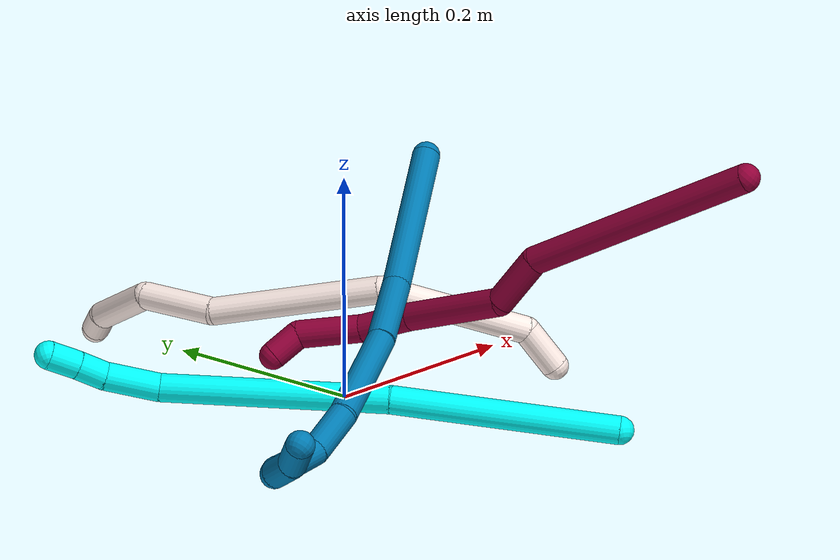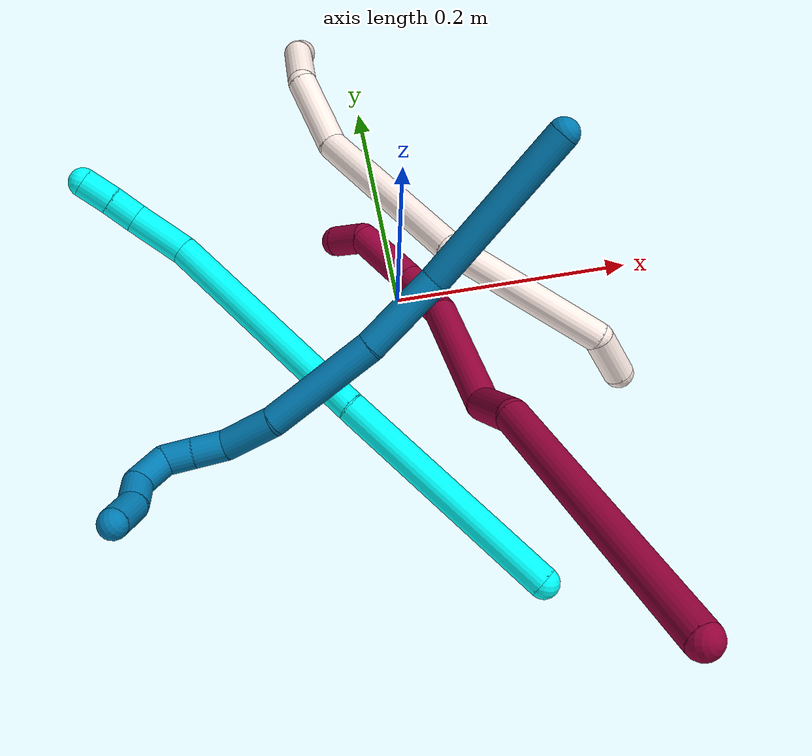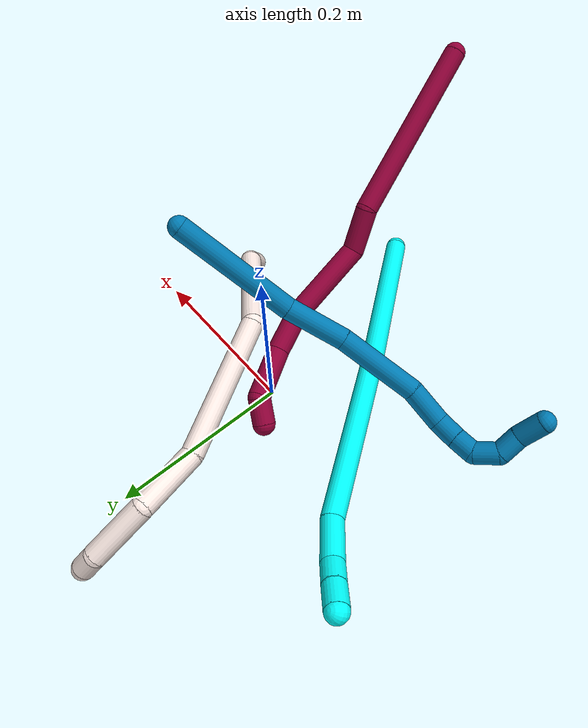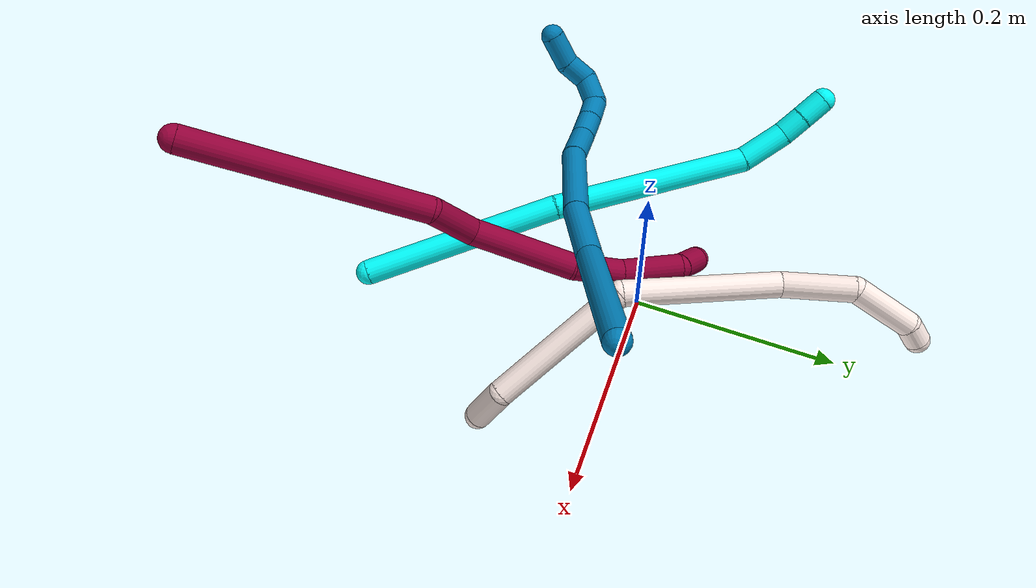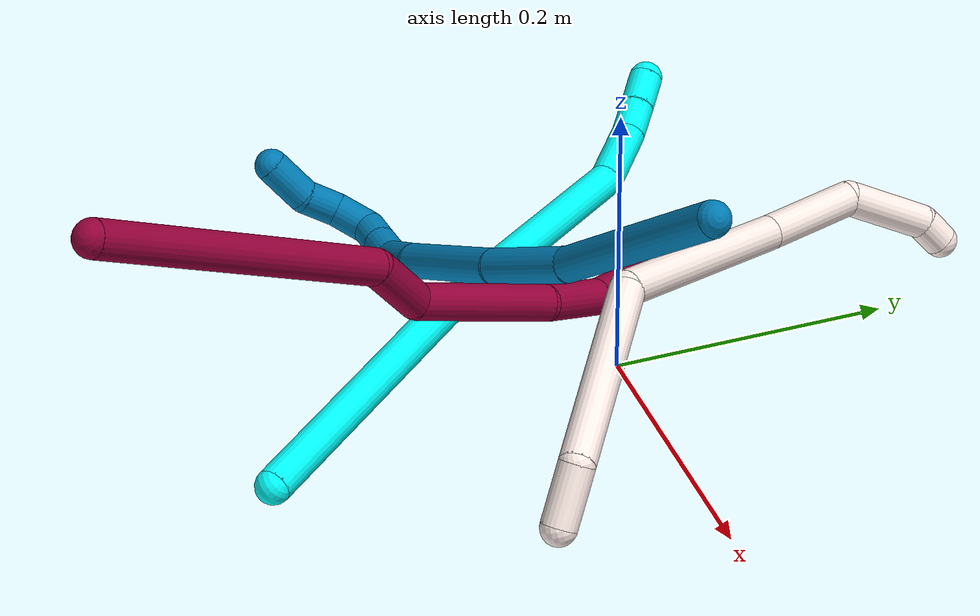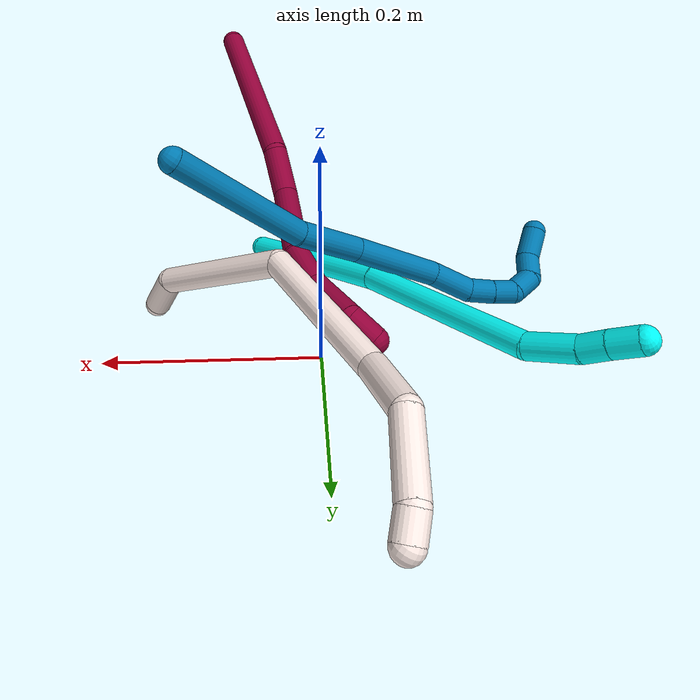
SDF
<sdf version="1.7">
 <world name="default">
  <model name="photoneo_s_sensor">
   <static>1</static>
   <pose>0 0 2 1.57079 1.57079 3.14159</pose>
   <link name="link">
    <inertial><mass>0.1</mass></inertial>
    <sensor name="sensor" type="depth">
     <update_rate>30</update_rate>
     <camera>
      <horizontal_fov>1.22</horizontal_fov>
      <image><width>1920</width><height>1200</height><format>B8G8R8</format></image>
      <clip><near>0.1</near><far>4</far></clip>
      <depth_camera><output>points</output></depth_camera>
     </camera>
     <plugin name="camera_plugin" filename="libgazebo_ros_depth_camera.so">
      <baseline>0.2</baseline>
      <alwaysOn>1</alwaysOn>
      <updateRate>0.0</updateRate>
      <cameraName>camera_ir</cameraName>
      <imageTopicName>/camera/color/image_raw</imageTopicName>
      <cameraInfoTopicName>/camera/color/camera_info</cameraInfoTopicName>
      <depthImageTopicName>/camera/depth/image_raw</depthImageTopicName>
      <depthImageCameraInfoTopicName>/camera/depth/camera_info</depthImageCameraInfoTopicName>
      <pointCloudTopicName>/camera/depth/points</pointCloudTopicName>
      <frameName>fr_optical</frameName>
      <pointCloudCutoff>0.1</pointCloudCutoff>
      <pointCloudCutoffMax>2.0</pointCloudCutoffMax>
      <distortionK1>0</distortionK1>
      <distortionK2>0</distortionK2>
      <distortionK3>0</distortionK3>
      <distortionT1>0</distortionT1>
      <distortionT2>0</distortionT2>
      <CxPrime>0</CxPrime>
      <Cx>0</Cx>
      <Cy>0</Cy>
      <focalLength>0</focalLength>
      <hackBaseline>0</hackBaseline>
     </plugin>
    </sensor>
   </link>
  </model>
  <model name="bin">
   <static>1</static>
   <link name="bottom">
    <collision name="collision-bottom">
     <pose>0 0 -0.01 0 -0 0</pose>
     <geometry><box><size>0.8 0.6 0.02</size></box></geometry>
     <surface>
      <friction><ode><mu>100</mu><mu2>100</mu2></ode></friction>
      <contact><collide_bitmask>65535</collide_bitmask></contact>
     </surface>
    </collision>
   </link>
   <link name="west_wall">
    <collision name="collision-west_wall">
     <pose>-0.41 0 0.1 0 -0 0</pose>
     <geometry><box><size>0.02 0.6 0.2</size></box></geometry>
     <surface>
      <friction><ode><mu>100</mu><mu2>100</mu2></ode></friction>
      <contact><collide_bitmask>65535</collide_bitmask></contact>
     </surface>
    </collision>
   </link>
   <link name="east_wall">
    <collision name="collision-east_wall">
     <pose>0.41 0 0.1 0 -0 0</pose>
     <geometry><box><size>0.02 0.6 0.2</size></box></geometry>
     <surface>
      <friction><ode><mu>100</mu><mu2>100</mu2></ode></friction>
      <contact><collide_bitmask>65535</collide_bitmask></contact>
     </surface>
    </collision>
   </link>
   <link name="south_wall">
    <collision name="collision-south_wall">
     <pose>0 -0.31 0.1 0 -0 0</pose>
     <geometry><box><size>0.8 0.02 0.2</size></box></geometry>
     <surface>
      <friction><ode><mu>100</mu><mu2>100</mu2></ode></friction>
      <contact><collide_bitmask>65535</collide_bitmask></contact>
     </surface>
    </collision>
   </link>
   <link name="north_wall">
    <collision name="collision-north_wall">
     <pose>0 0.31 0.1 0 -0 0</pose>
     <geometry><box><size>0.8 0.02 0.2</size></box></geometry>
     <surface>
      <friction><ode><mu>100</mu><mu2>100</mu2></ode></friction>
      <contact><collide_bitmask>65535</collide_bitmask></contact>
     </surface>
    </collision>
   </link>
  </model>
  <model name="3">
   <static>0</static>
   <link name="3">
    <collision name="collision-cylinder-e_1_1_4">
     <pose>-0.059244 0.069343 -0.038996 -2.08308 -0.640087 1.03106</pose>
     <geometry><cylinder><radius>0.0125</radius><length>0.198383</length></cylinder></geometry>
     <surface>
      <friction><ode><mu>1.16</mu><mu2>1.16</mu2><slip1>0</slip1><slip2>0</slip2></ode></friction>
      <contact><ode><kp>1e+06</kp><kd>1</kd><max_vel>0</max_vel><min_depth>0.001</min_depth></ode></contact>
     </surface>
    </collision>
    <visual name="visual-cylinder-e_1_1_4">
     <pose>-0.059244 0.069343 -0.038996 -2.08308 -0.640087 1.03106</pose>
     <geometry><cylinder><radius>0.0125</radius><length>0.198383</length></cylinder></geometry>
     <material><ambient>0.003922 1 0.996078 1</ambient></material>
    </visual>
    <collision name="collision-cylinder-e_2_4_5">
     <pose>-0.186497 0.20314 -0.113076 -2.06928 -0.747408 1.16663</pose>
     <geometry><cylinder><radius>0.0125</radius><length>0.200106</length></cylinder></geometry>
     <surface>
      <friction><ode><mu>1.16</mu><mu2>1.16</mu2><slip1>0</slip1><slip2>0</slip2></ode></friction>
      <contact><ode><kp>1e+06</kp><kd>1</kd><max_vel>0</max_vel><min_depth>0.001</min_depth></ode></contact>
     </surface>
    </collision>
    <visual name="visual-cylinder-e_2_4_5">
     <pose>-0.186497 0.20314 -0.113076 -2.06928 -0.747408 1.16663</pose>
     <geometry><cylinder><radius>0.0125</radius><length>0.200106</length></cylinder></geometry>
     <material><ambient>0.003922 1 0.996078 1</ambient></material>
    </visual>
    <collision name="collision-cylinder-e_3_5_6">
     <pose>-0.264411 0.288225 -0.156956 -1.97377 -0.415853 0.618108</pose>
     <geometry><cylinder><radius>0.0125</radius><length>0.049034</length></cylinder></geometry>
     <surface>
      <friction><ode><mu>1.16</mu><mu2>1.16</mu2><slip1>0</slip1><slip2>0</slip2></ode></friction>
      <contact><ode><kp>1e+06</kp><kd>1</kd><max_vel>0</max_vel><min_depth>0.001</min_depth></ode></contact>
     </surface>
    </collision>
    <visual name="visual-cylinder-e_3_5_6">
     <pose>-0.264411 0.288225 -0.156956 -1.97377 -0.415853 0.618108</pose>
     <geometry><cylinder><radius>0.0125</radius><length>0.049034</length></cylinder></geometry>
     <material><ambient>0.003922 1 0.996078 1</ambient></material>
    </visual>
    <collision name="collision-cylinder-e_4_6_7">
     <pose>-0.277137 0.319765 -0.171368 -2.04631 -0.226035 0.368008</pose>
     <geometry><cylinder><radius>0.0125</radius><length>0.025181</length></cylinder></geometry>
     <surface>
      <friction><ode><mu>1.16</mu><mu2>1.16</mu2><slip1>0</slip1><slip2>0</slip2></ode></friction>
      <contact><ode><kp>1e+06</kp><kd>1</kd><max_vel>0</max_vel><min_depth>0.001</min_depth></ode></contact>
     </surface>
    </collision>
    <visual name="visual-cylinder-e_4_6_7">
     <pose>-0.277137 0.319765 -0.171368 -2.04631 -0.226035 0.368008</pose>
     <geometry><cylinder><radius>0.0125</radius><length>0.025181</length></cylinder></geometry>
     <material><ambient>0.003922 1 0.996078 1</ambient></material>
    </visual>
    <collision name="collision-cylinder-e_5_7_2">
     <pose>-0.283342 0.342732 -0.18241 -1.99357 -0.250471 0.384566</pose>
     <geometry><cylinder><radius>0.0125</radius><length>0.027297</length></cylinder></geometry>
     <surface>
      <friction><ode><mu>1.16</mu><mu2>1.16</mu2><slip1>0</slip1><slip2>0</slip2></ode></friction>
      <contact><ode><kp>1e+06</kp><kd>1</kd><max_vel>0</max_vel><min_depth>0.001</min_depth></ode></contact>
     </surface>
    </collision>
    <visual name="visual-cylinder-e_5_7_2">
     <pose>-0.283342 0.342732 -0.18241 -1.99357 -0.250471 0.384566</pose>
     <geometry><cylinder><radius>0.0125</radius><length>0.027297</length></cylinder></geometry>
     <material><ambient>0.003922 1 0.996078 1</ambient></material>
    </visual>
    <collision name="collision-sphere-2">
     <pose>-0.286724 0.35479 -0.187835 0 -0 0</pose>
     <geometry><sphere><radius>0.0125</radius></sphere></geometry>
     <surface>
      <friction><ode><mu>1.16</mu><mu2>1.16</mu2><slip1>0</slip1><slip2>0</slip2></ode></friction>
      <contact><ode><kp>1e+06</kp><kd>1</kd><max_vel>0</max_vel><min_depth>0.001</min_depth></ode></contact>
     </surface>
    </collision>
    <visual name="visual-sphere-2">
     <pose>-0.286724 0.35479 -0.187835 0 -0 0</pose>
     <geometry><sphere><radius>0.0125</radius></sphere></geometry>
     <material><ambient>0.003922 1 0.996078 1</ambient></material>
    </visual>
    <collision name="collision-sphere-7">
     <pose>-0.279959 0.330673 -0.176985 0 -0 0</pose>
     <geometry><sphere><radius>0.0125</radius></sphere></geometry>
     <surface>
      <friction><ode><mu>1.16</mu><mu2>1.16</mu2><slip1>0</slip1><slip2>0</slip2></ode></friction>
      <contact><ode><kp>1e+06</kp><kd>1</kd><max_vel>0</max_vel><min_depth>0.001</min_depth></ode></contact>
     </surface>
    </collision>
    <visual name="visual-sphere-7">
     <pose>-0.279959 0.330673 -0.176985 0 -0 0</pose>
     <geometry><sphere><radius>0.0125</radius></sphere></geometry>
     <material><ambient>0.003922 1 0.996078 1</ambient></material>
    </visual>
    <collision name="collision-sphere-6">
     <pose>-0.274315 0.308856 -0.165751 0 -0 0</pose>
     <geometry><sphere><radius>0.0125</radius></sphere></geometry>
     <surface>
      <friction><ode><mu>1.16</mu><mu2>1.16</mu2><slip1>0</slip1><slip2>0</slip2></ode></friction>
      <contact><ode><kp>1e+06</kp><kd>1</kd><max_vel>0</max_vel><min_depth>0.001</min_depth></ode></contact>
     </surface>
    </collision>
    <visual name="visual-sphere-6">
     <pose>-0.274315 0.308856 -0.165751 0 -0 0</pose>
     <geometry><sphere><radius>0.0125</radius></sphere></geometry>
     <material><ambient>0.003922 1 0.996078 1</ambient></material>
    </visual>
    <collision name="collision-sphere-5">
     <pose>-0.254507 0.267594 -0.148161 0 -0 0</pose>
     <geometry><sphere><radius>0.0125</radius></sphere></geometry>
     <surface>
      <friction><ode><mu>1.16</mu><mu2>1.16</mu2><slip1>0</slip1><slip2>0</slip2></ode></friction>
      <contact><ode><kp>1e+06</kp><kd>1</kd><max_vel>0</max_vel><min_depth>0.001</min_depth></ode></contact>
     </surface>
    </collision>
    <visual name="visual-sphere-5">
     <pose>-0.254507 0.267594 -0.148161 0 -0 0</pose>
     <geometry><sphere><radius>0.0125</radius></sphere></geometry>
     <material><ambient>0.003922 1 0.996078 1</ambient></material>
    </visual>
    <collision name="collision-sphere-1">
     <geometry><sphere><radius>0.0125</radius></sphere></geometry>
     <surface>
      <friction><ode><mu>1.16</mu><mu2>1.16</mu2><slip1>0</slip1><slip2>0</slip2></ode></friction>
      <contact><ode><kp>1e+06</kp><kd>1</kd><max_vel>0</max_vel><min_depth>0.001</min_depth></ode></contact>
     </surface>
    </collision>
    <visual name="visual-sphere-1">
     <geometry><sphere><radius>0.0125</radius></sphere></geometry>
     <material><ambient>0.003922 1 0.996078 1</ambient></material>
    </visual>
    <collision name="collision-sphere-4">
     <pose>-0.118487 0.138686 -0.077992 0 -0 0</pose>
     <geometry><sphere><radius>0.0125</radius></sphere></geometry>
     <surface>
      <friction><ode><mu>1.16</mu><mu2>1.16</mu2><slip1>0</slip1><slip2>0</slip2></ode></friction>
      <contact><ode><kp>1e+06</kp><kd>1</kd><max_vel>0</max_vel><min_depth>0.001</min_depth></ode></contact>
     </surface>
    </collision>
    <visual name="visual-sphere-4">
     <pose>-0.118487 0.138686 -0.077992 0 -0 0</pose>
     <geometry><sphere><radius>0.0125</radius></sphere></geometry>
     <material><ambient>0.003922 1 0.996078 1</ambient></material>
    </visual>
    <inertial>
     <pose>-0.1535 0.171892 -0.094708 0 -0 0</pose>
     <mass>0.5</mass>
     <inertia>
      <ixx>0.001374</ixx>
      <ixy>0</ixy>
      <ixz>0</ixz>
      <iyy>0.001313</iyy>
      <iyz>0</iyz>
      <izz>-6.6e-05</izz>
     </inertia>
    </inertial>
   </link>
   <pose>0.061919 -0.262532 0.012493 2.75175 -0.68094 -1.44195</pose>
  </model>
  <model name="8">
   <static>0</static>
   <link name="8">
    <collision name="collision-cylinder-e_1_1_4">
     <pose>8.4e-05 0.061785 -0.087802 -2.5284 0.000784 -0.002476</pose>
     <geometry><cylinder><radius>0.0125</radius><length>0.214724</length></cylinder></geometry>
     <surface>
      <friction><ode><mu>1.16</mu><mu2>1.16</mu2><slip1>0</slip1><slip2>0</slip2></ode></friction>
      <contact><ode><kp>1e+06</kp><kd>1</kd><max_vel>0</max_vel><min_depth>0.001</min_depth></ode></contact>
     </surface>
    </collision>
    <visual name="visual-cylinder-e_1_1_4">
     <pose>8.4e-05 0.061785 -0.087802 -2.5284 0.000784 -0.002476</pose>
     <geometry><cylinder><radius>0.0125</radius><length>0.214724</length></cylinder></geometry>
     <material><ambient>0.584314 0 0.227451 1</ambient></material>
    </visual>
    <collision name="collision-cylinder-e_2_4_5">
     <pose>0.00669 0.129295 -0.199542 -2.90679 0.259012 -1.66977</pose>
     <geometry><cylinder><radius>0.0125</radius><length>0.050924</length></cylinder></geometry>
     <surface>
      <friction><ode><mu>1.16</mu><mu2>1.16</mu2><slip1>0</slip1><slip2>0</slip2></ode></friction>
      <contact><ode><kp>1e+06</kp><kd>1</kd><max_vel>0</max_vel><min_depth>0.001</min_depth></ode></contact>
     </surface>
    </collision>
    <visual name="visual-cylinder-e_2_4_5">
     <pose>0.00669 0.129295 -0.199542 -2.90679 0.259012 -1.66977</pose>
     <geometry><cylinder><radius>0.0125</radius><length>0.050924</length></cylinder></geometry>
     <material><ambient>0.584314 0 0.227451 1</ambient></material>
    </visual>
    <collision name="collision-cylinder-e_3_5_6">
     <pose>0.01428 0.171749 -0.256834 -2.30811 0.021531 -0.048631</pose>
     <geometry><cylinder><radius>0.0125</radius><length>0.099248</length></cylinder></geometry>
     <surface>
      <friction><ode><mu>1.16</mu><mu2>1.16</mu2><slip1>0</slip1><slip2>0</slip2></ode></friction>
      <contact><ode><kp>1e+06</kp><kd>1</kd><max_vel>0</max_vel><min_depth>0.001</min_depth></ode></contact>
     </surface>
    </collision>
    <visual name="visual-cylinder-e_3_5_6">
     <pose>0.01428 0.171749 -0.256834 -2.30811 0.021531 -0.048631</pose>
     <geometry><cylinder><radius>0.0125</radius><length>0.099248</length></cylinder></geometry>
     <material><ambient>0.584314 0 0.227451 1</ambient></material>
    </visual>
    <collision name="collision-cylinder-e_4_6_7">
     <pose>0.011717 0.222775 -0.308942 -2.49015 -0.152763 0.445652</pose>
     <geometry><cylinder><radius>0.0125</radius><length>0.047722</length></cylinder></geometry>
     <surface>
      <friction><ode><mu>1.16</mu><mu2>1.16</mu2><slip1>0</slip1><slip2>0</slip2></ode></friction>
      <contact><ode><kp>1e+06</kp><kd>1</kd><max_vel>0</max_vel><min_depth>0.001</min_depth></ode></contact>
     </surface>
    </collision>
    <visual name="visual-cylinder-e_4_6_7">
     <pose>0.011717 0.222775 -0.308942 -2.49015 -0.152763 0.445652</pose>
     <geometry><cylinder><radius>0.0125</radius><length>0.047722</length></cylinder></geometry>
     <material><ambient>0.584314 0 0.227451 1</ambient></material>
    </visual>
    <collision name="collision-cylinder-e_5_7_8">
     <pose>-0.002589 0.254002 -0.34887 -2.46717 -0.375145 0.992381</pose>
     <geometry><cylinder><radius>0.0125</radius><length>0.05827</length></cylinder></geometry>
     <surface>
      <friction><ode><mu>1.16</mu><mu2>1.16</mu2><slip1>0</slip1><slip2>0</slip2></ode></friction>
      <contact><ode><kp>1e+06</kp><kd>1</kd><max_vel>0</max_vel><min_depth>0.001</min_depth></ode></contact>
     </surface>
    </collision>
    <visual name="visual-cylinder-e_5_7_8">
     <pose>-0.002589 0.254002 -0.34887 -2.46717 -0.375145 0.992381</pose>
     <geometry><cylinder><radius>0.0125</radius><length>0.05827</length></cylinder></geometry>
     <material><ambient>0.584314 0 0.227451 1</ambient></material>
    </visual>
    <collision name="collision-cylinder-e_6_8_2">
     <pose>-0.017061 0.270324 -0.384082 3.09848 -0.263879 -2.81953</pose>
     <geometry><cylinder><radius>0.0125</radius><length>0.029112</length></cylinder></geometry>
     <surface>
      <friction><ode><mu>1.16</mu><mu2>1.16</mu2><slip1>0</slip1><slip2>0</slip2></ode></friction>
      <contact><ode><kp>1e+06</kp><kd>1</kd><max_vel>0</max_vel><min_depth>0.001</min_depth></ode></contact>
     </surface>
    </collision>
    <visual name="visual-cylinder-e_6_8_2">
     <pose>-0.017061 0.270324 -0.384082 3.09848 -0.263879 -2.81953</pose>
     <geometry><cylinder><radius>0.0125</radius><length>0.029112</length></cylinder></geometry>
     <material><ambient>0.584314 0 0.227451 1</ambient></material>
    </visual>
    <collision name="collision-sphere-2">
     <pose>-0.020857 0.269719 -0.398121 0 -0 0</pose>
     <geometry><sphere><radius>0.0125</radius></sphere></geometry>
     <surface>
      <friction><ode><mu>1.16</mu><mu2>1.16</mu2><slip1>0</slip1><slip2>0</slip2></ode></friction>
      <contact><ode><kp>1e+06</kp><kd>1</kd><max_vel>0</max_vel><min_depth>0.001</min_depth></ode></contact>
     </surface>
    </collision>
    <visual name="visual-sphere-2">
     <pose>-0.020857 0.269719 -0.398121 0 -0 0</pose>
     <geometry><sphere><radius>0.0125</radius></sphere></geometry>
     <material><ambient>0.584314 0 0.227451 1</ambient></material>
    </visual>
    <collision name="collision-sphere-4">
     <pose>0.000168 0.123569 -0.175604 0 -0 0</pose>
     <geometry><sphere><radius>0.0125</radius></sphere></geometry>
     <surface>
      <friction><ode><mu>1.16</mu><mu2>1.16</mu2><slip1>0</slip1><slip2>0</slip2></ode></friction>
      <contact><ode><kp>1e+06</kp><kd>1</kd><max_vel>0</max_vel><min_depth>0.001</min_depth></ode></contact>
     </surface>
    </collision>
    <visual name="visual-sphere-4">
     <pose>0.000168 0.123569 -0.175604 0 -0 0</pose>
     <geometry><sphere><radius>0.0125</radius></sphere></geometry>
     <material><ambient>0.584314 0 0.227451 1</ambient></material>
    </visual>
    <collision name="collision-sphere-1">
     <geometry><sphere><radius>0.0125</radius></sphere></geometry>
     <surface>
      <friction><ode><mu>1.16</mu><mu2>1.16</mu2><slip1>0</slip1><slip2>0</slip2></ode></friction>
      <contact><ode><kp>1e+06</kp><kd>1</kd><max_vel>0</max_vel><min_depth>0.001</min_depth></ode></contact>
     </surface>
    </collision>
    <visual name="visual-sphere-1">
     <geometry><sphere><radius>0.0125</radius></sphere></geometry>
     <material><ambient>0.584314 0 0.227451 1</ambient></material>
    </visual>
    <collision name="collision-sphere-8">
     <pose>-0.013264 0.27093 -0.370043 0 -0 0</pose>
     <geometry><sphere><radius>0.0125</radius></sphere></geometry>
     <surface>
      <friction><ode><mu>1.16</mu><mu2>1.16</mu2><slip1>0</slip1><slip2>0</slip2></ode></friction>
      <contact><ode><kp>1e+06</kp><kd>1</kd><max_vel>0</max_vel><min_depth>0.001</min_depth></ode></contact>
     </surface>
    </collision>
    <visual name="visual-sphere-8">
     <pose>-0.013264 0.27093 -0.370043 0 -0 0</pose>
     <geometry><sphere><radius>0.0125</radius></sphere></geometry>
     <material><ambient>0.584314 0 0.227451 1</ambient></material>
    </visual>
    <collision name="collision-sphere-5">
     <pose>0.013211 0.135022 -0.223479 0 -0 0</pose>
     <geometry><sphere><radius>0.0125</radius></sphere></geometry>
     <surface>
      <friction><ode><mu>1.16</mu><mu2>1.16</mu2><slip1>0</slip1><slip2>0</slip2></ode></friction>
      <contact><ode><kp>1e+06</kp><kd>1</kd><max_vel>0</max_vel><min_depth>0.001</min_depth></ode></contact>
     </surface>
    </collision>
    <visual name="visual-sphere-5">
     <pose>0.013211 0.135022 -0.223479 0 -0 0</pose>
     <geometry><sphere><radius>0.0125</radius></sphere></geometry>
     <material><ambient>0.584314 0 0.227451 1</ambient></material>
    </visual>
    <collision name="collision-sphere-6">
     <pose>0.015348 0.208475 -0.290188 0 -0 0</pose>
     <geometry><sphere><radius>0.0125</radius></sphere></geometry>
     <surface>
      <friction><ode><mu>1.16</mu><mu2>1.16</mu2><slip1>0</slip1><slip2>0</slip2></ode></friction>
      <contact><ode><kp>1e+06</kp><kd>1</kd><max_vel>0</max_vel><min_depth>0.001</min_depth></ode></contact>
     </surface>
    </collision>
    <visual name="visual-sphere-6">
     <pose>0.015348 0.208475 -0.290188 0 -0 0</pose>
     <geometry><sphere><radius>0.0125</radius></sphere></geometry>
     <material><ambient>0.584314 0 0.227451 1</ambient></material>
    </visual>
    <collision name="collision-sphere-7">
     <pose>0.008086 0.237074 -0.327696 0 -0 0</pose>
     <geometry><sphere><radius>0.0125</radius></sphere></geometry>
     <surface>
      <friction><ode><mu>1.16</mu><mu2>1.16</mu2><slip1>0</slip1><slip2>0</slip2></ode></friction>
      <contact><ode><kp>1e+06</kp><kd>1</kd><max_vel>0</max_vel><min_depth>0.001</min_depth></ode></contact>
     </surface>
    </collision>
    <visual name="visual-sphere-7">
     <pose>0.008086 0.237074 -0.327696 0 -0 0</pose>
     <geometry><sphere><radius>0.0125</radius></sphere></geometry>
     <material><ambient>0.584314 0 0.227451 1</ambient></material>
    </visual>
    <inertial>
     <pose>0.003375 0.140396 -0.201517 0 -0 0</pose>
     <mass>0.5</mass>
     <inertia>
      <ixx>0.000932</ixx>
      <ixy>0</ixy>
      <ixz>0</ixz>
      <iyy>-0.000725</iyy>
      <iyz>0</iyz>
      <izz>-0.000591</izz>
     </inertia>
    </inertial>
   </link>
   <pose>0.095382 -0.366032 0.248713 0.362771 0.638925 -0.103189</pose>
  </model>
  <model name="9">
   <static>0</static>
   <link name="9">
    <collision name="collision-cylinder-e_1_1_4">
     <pose>0.010388 -0.021405 -0.069303 2.84202 0.142249 0.882137</pose>
     <geometry><cylinder><radius>0.0125</radius><length>0.146547</length></cylinder></geometry>
     <surface>
      <friction><ode><mu>1.16</mu><mu2>1.16</mu2><slip1>0</slip1><slip2>0</slip2></ode></friction>
      <contact><ode><kp>1e+06</kp><kd>1</kd><max_vel>0</max_vel><min_depth>0.001</min_depth></ode></contact>
     </surface>
    </collision>
    <visual name="visual-cylinder-e_1_1_4">
     <pose>0.010388 -0.021405 -0.069303 2.84202 0.142249 0.882137</pose>
     <geometry><cylinder><radius>0.0125</radius><length>0.146547</length></cylinder></geometry>
     <material><ambient>0 0.490196 0.709804 1</ambient></material>
    </visual>
    <collision name="collision-cylinder-e_2_4_5">
     <pose>0.020838 -0.058327 -0.170654 2.6907 0.001756 0.007656</pose>
     <geometry><cylinder><radius>0.0125</radius><length>0.071214</length></cylinder></geometry>
     <surface>
      <friction><ode><mu>1.16</mu><mu2>1.16</mu2><slip1>0</slip1><slip2>0</slip2></ode></friction>
      <contact><ode><kp>1e+06</kp><kd>1</kd><max_vel>0</max_vel><min_depth>0.001</min_depth></ode></contact>
     </surface>
    </collision>
    <visual name="visual-cylinder-e_2_4_5">
     <pose>0.020838 -0.058327 -0.170654 2.6907 0.001756 0.007656</pose>
     <geometry><cylinder><radius>0.0125</radius><length>0.071214</length></cylinder></geometry>
     <material><ambient>0 0.490196 0.709804 1</ambient></material>
    </visual>
    <collision name="collision-cylinder-e_3_5_6">
     <pose>0.016484 -0.089555 -0.248263 2.80951 -0.091393 -0.532761</pose>
     <geometry><cylinder><radius>0.0125</radius><length>0.096792</length></cylinder></geometry>
     <surface>
      <friction><ode><mu>1.16</mu><mu2>1.16</mu2><slip1>0</slip1><slip2>0</slip2></ode></friction>
      <contact><ode><kp>1e+06</kp><kd>1</kd><max_vel>0</max_vel><min_depth>0.001</min_depth></ode></contact>
     </surface>
    </collision>
    <visual name="visual-cylinder-e_3_5_6">
     <pose>0.016484 -0.089555 -0.248263 2.80951 -0.091393 -0.532761</pose>
     <geometry><cylinder><radius>0.0125</radius><length>0.096792</length></cylinder></geometry>
     <material><ambient>0 0.490196 0.709804 1</ambient></material>
    </visual>
    <collision name="collision-cylinder-e_4_6_7">
     <pose>0.008406 -0.107564 -0.316155 3.03907 -0.161651 -2.0124</pose>
     <geometry><cylinder><radius>0.0125</radius><length>0.045492</length></cylinder></geometry>
     <surface>
      <friction><ode><mu>1.16</mu><mu2>1.16</mu2><slip1>0</slip1><slip2>0</slip2></ode></friction>
      <contact><ode><kp>1e+06</kp><kd>1</kd><max_vel>0</max_vel><min_depth>0.001</min_depth></ode></contact>
     </surface>
    </collision>
    <visual name="visual-cylinder-e_4_6_7">
     <pose>0.008406 -0.107564 -0.316155 3.03907 -0.161651 -2.0124</pose>
     <geometry><cylinder><radius>0.0125</radius><length>0.045492</length></cylinder></geometry>
     <material><ambient>0 0.490196 0.709804 1</ambient></material>
    </visual>
    <collision name="collision-cylinder-e_5_7_8">
     <pose>-0.001898 -0.11258 -0.349718 2.90409 -0.521786 -2.30105</pose>
     <geometry><cylinder><radius>0.0125</radius><length>0.026659</length></cylinder></geometry>
     <surface>
      <friction><ode><mu>1.16</mu><mu2>1.16</mu2><slip1>0</slip1><slip2>0</slip2></ode></friction>
      <contact><ode><kp>1e+06</kp><kd>1</kd><max_vel>0</max_vel><min_depth>0.001</min_depth></ode></contact>
     </surface>
    </collision>
    <visual name="visual-cylinder-e_5_7_8">
     <pose>-0.001898 -0.11258 -0.349718 2.90409 -0.521786 -2.30105</pose>
     <geometry><cylinder><radius>0.0125</radius><length>0.026659</length></cylinder></geometry>
     <material><ambient>0 0.490196 0.709804 1</ambient></material>
    </visual>
    <collision name="collision-cylinder-e_6_8_9">
     <pose>-0.014844 -0.118417 -0.370414 2.82341 -0.563846 -2.12985</pose>
     <geometry><cylinder><radius>0.0125</radius><length>0.023582</length></cylinder></geometry>
     <surface>
      <friction><ode><mu>1.16</mu><mu2>1.16</mu2><slip1>0</slip1><slip2>0</slip2></ode></friction>
      <contact><ode><kp>1e+06</kp><kd>1</kd><max_vel>0</max_vel><min_depth>0.001</min_depth></ode></contact>
     </surface>
    </collision>
    <visual name="visual-cylinder-e_6_8_9">
     <pose>-0.014844 -0.118417 -0.370414 2.82341 -0.563846 -2.12985</pose>
     <geometry><cylinder><radius>0.0125</radius><length>0.023582</length></cylinder></geometry>
     <material><ambient>0 0.490196 0.709804 1</ambient></material>
    </visual>
    <collision name="collision-cylinder-e_7_9_10">
     <pose>-0.02617 -0.133301 -0.386455 2.08036 -0.356861 -0.596411</pose>
     <geometry><cylinder><radius>0.0125</radius><length>0.02877</length></cylinder></geometry>
     <surface>
      <friction><ode><mu>1.16</mu><mu2>1.16</mu2><slip1>0</slip1><slip2>0</slip2></ode></friction>
      <contact><ode><kp>1e+06</kp><kd>1</kd><max_vel>0</max_vel><min_depth>0.001</min_depth></ode></contact>
     </surface>
    </collision>
    <visual name="visual-cylinder-e_7_9_10">
     <pose>-0.02617 -0.133301 -0.386455 2.08036 -0.356861 -0.596411</pose>
     <geometry><cylinder><radius>0.0125</radius><length>0.02877</length></cylinder></geometry>
     <material><ambient>0 0.490196 0.709804 1</ambient></material>
    </visual>
    <collision name="collision-cylinder-e_8_10_11">
     <pose>-0.032322 -0.158482 -0.390476 1.38273 -0.082315 -0.068138</pose>
     <geometry><cylinder><radius>0.0125</radius><length>0.027404</length></cylinder></geometry>
     <surface>
      <friction><ode><mu>1.16</mu><mu2>1.16</mu2><slip1>0</slip1><slip2>0</slip2></ode></friction>
      <contact><ode><kp>1e+06</kp><kd>1</kd><max_vel>0</max_vel><min_depth>0.001</min_depth></ode></contact>
     </surface>
    </collision>
    <visual name="visual-cylinder-e_8_10_11">
     <pose>-0.032322 -0.158482 -0.390476 1.38273 -0.082315 -0.068138</pose>
     <geometry><cylinder><radius>0.0125</radius><length>0.027404</length></cylinder></geometry>
     <material><ambient>0 0.490196 0.709804 1</ambient></material>
    </visual>
    <collision name="collision-cylinder-e_9_11_2">
     <pose>-0.040939 -0.186712 -0.385545 1.41165 -0.463018 -0.396554</pose>
     <geometry><cylinder><radius>0.0125</radius><length>0.033542</length></cylinder></geometry>
     <surface>
      <friction><ode><mu>1.16</mu><mu2>1.16</mu2><slip1>0</slip1><slip2>0</slip2></ode></friction>
      <contact><ode><kp>1e+06</kp><kd>1</kd><max_vel>0</max_vel><min_depth>0.001</min_depth></ode></contact>
     </surface>
    </collision>
    <visual name="visual-cylinder-e_9_11_2">
     <pose>-0.040939 -0.186712 -0.385545 1.41165 -0.463018 -0.396554</pose>
     <geometry><cylinder><radius>0.0125</radius><length>0.033542</length></cylinder></geometry>
     <material><ambient>0 0.490196 0.709804 1</ambient></material>
    </visual>
    <collision name="collision-sphere-2">
     <pose>-0.04843 -0.201528 -0.383168 0 -0 0</pose>
     <geometry><sphere><radius>0.0125</radius></sphere></geometry>
     <surface>
      <friction><ode><mu>1.16</mu><mu2>1.16</mu2><slip1>0</slip1><slip2>0</slip2></ode></friction>
      <contact><ode><kp>1e+06</kp><kd>1</kd><max_vel>0</max_vel><min_depth>0.001</min_depth></ode></contact>
     </surface>
    </collision>
    <visual name="visual-sphere-2">
     <pose>-0.04843 -0.201528 -0.383168 0 -0 0</pose>
     <geometry><sphere><radius>0.0125</radius></sphere></geometry>
     <material><ambient>0 0.490196 0.709804 1</ambient></material>
    </visual>
    <collision name="collision-sphere-11">
     <pose>-0.033449 -0.171897 -0.387923 0 -0 0</pose>
     <geometry><sphere><radius>0.0125</radius></sphere></geometry>
     <surface>
      <friction><ode><mu>1.16</mu><mu2>1.16</mu2><slip1>0</slip1><slip2>0</slip2></ode></friction>
      <contact><ode><kp>1e+06</kp><kd>1</kd><max_vel>0</max_vel><min_depth>0.001</min_depth></ode></contact>
     </surface>
    </collision>
    <visual name="visual-sphere-11">
     <pose>-0.033449 -0.171897 -0.387923 0 -0 0</pose>
     <geometry><sphere><radius>0.0125</radius></sphere></geometry>
     <material><ambient>0 0.490196 0.709804 1</ambient></material>
    </visual>
    <collision name="collision-sphere-10">
     <pose>-0.031195 -0.145067 -0.39303 0 -0 0</pose>
     <geometry><sphere><radius>0.0125</radius></sphere></geometry>
     <surface>
      <friction><ode><mu>1.16</mu><mu2>1.16</mu2><slip1>0</slip1><slip2>0</slip2></ode></friction>
      <contact><ode><kp>1e+06</kp><kd>1</kd><max_vel>0</max_vel><min_depth>0.001</min_depth></ode></contact>
     </surface>
    </collision>
    <visual name="visual-sphere-10">
     <pose>-0.031195 -0.145067 -0.39303 0 -0 0</pose>
     <geometry><sphere><radius>0.0125</radius></sphere></geometry>
     <material><ambient>0 0.490196 0.709804 1</ambient></material>
    </visual>
    <collision name="collision-sphere-9">
     <pose>-0.021145 -0.121534 -0.37988 0 -0 0</pose>
     <geometry><sphere><radius>0.0125</radius></sphere></geometry>
     <surface>
      <friction><ode><mu>1.16</mu><mu2>1.16</mu2><slip1>0</slip1><slip2>0</slip2></ode></friction>
      <contact><ode><kp>1e+06</kp><kd>1</kd><max_vel>0</max_vel><min_depth>0.001</min_depth></ode></contact>
     </surface>
    </collision>
    <visual name="visual-sphere-9">
     <pose>-0.021145 -0.121534 -0.37988 0 -0 0</pose>
     <geometry><sphere><radius>0.0125</radius></sphere></geometry>
     <material><ambient>0 0.490196 0.709804 1</ambient></material>
    </visual>
    <collision name="collision-sphere-4">
     <pose>0.020776 -0.04281 -0.138606 0 -0 0</pose>
     <geometry><sphere><radius>0.0125</radius></sphere></geometry>
     <surface>
      <friction><ode><mu>1.16</mu><mu2>1.16</mu2><slip1>0</slip1><slip2>0</slip2></ode></friction>
      <contact><ode><kp>1e+06</kp><kd>1</kd><max_vel>0</max_vel><min_depth>0.001</min_depth></ode></contact>
     </surface>
    </collision>
    <visual name="visual-sphere-4">
     <pose>0.020776 -0.04281 -0.138606 0 -0 0</pose>
     <geometry><sphere><radius>0.0125</radius></sphere></geometry>
     <material><ambient>0 0.490196 0.709804 1</ambient></material>
    </visual>
    <collision name="collision-sphere-1">
     <geometry><sphere><radius>0.0125</radius></sphere></geometry>
     <surface>
      <friction><ode><mu>1.16</mu><mu2>1.16</mu2><slip1>0</slip1><slip2>0</slip2></ode></friction>
      <contact><ode><kp>1e+06</kp><kd>1</kd><max_vel>0</max_vel><min_depth>0.001</min_depth></ode></contact>
     </surface>
    </collision>
    <visual name="visual-sphere-1">
     <geometry><sphere><radius>0.0125</radius></sphere></geometry>
     <material><ambient>0 0.490196 0.709804 1</ambient></material>
    </visual>
    <collision name="collision-sphere-8">
     <pose>-0.008542 -0.115299 -0.360949 0 -0 0</pose>
     <geometry><sphere><radius>0.0125</radius></sphere></geometry>
     <surface>
      <friction><ode><mu>1.16</mu><mu2>1.16</mu2><slip1>0</slip1><slip2>0</slip2></ode></friction>
      <contact><ode><kp>1e+06</kp><kd>1</kd><max_vel>0</max_vel><min_depth>0.001</min_depth></ode></contact>
     </surface>
    </collision>
    <visual name="visual-sphere-8">
     <pose>-0.008542 -0.115299 -0.360949 0 -0 0</pose>
     <geometry><sphere><radius>0.0125</radius></sphere></geometry>
     <material><ambient>0 0.490196 0.709804 1</ambient></material>
    </visual>
    <collision name="collision-sphere-5">
     <pose>0.020901 -0.073843 -0.202702 0 -0 0</pose>
     <geometry><sphere><radius>0.0125</radius></sphere></geometry>
     <surface>
      <friction><ode><mu>1.16</mu><mu2>1.16</mu2><slip1>0</slip1><slip2>0</slip2></ode></friction>
      <contact><ode><kp>1e+06</kp><kd>1</kd><max_vel>0</max_vel><min_depth>0.001</min_depth></ode></contact>
     </surface>
    </collision>
    <visual name="visual-sphere-5">
     <pose>0.020901 -0.073843 -0.202702 0 -0 0</pose>
     <geometry><sphere><radius>0.0125</radius></sphere></geometry>
     <material><ambient>0 0.490196 0.709804 1</ambient></material>
    </visual>
    <collision name="collision-sphere-6">
     <pose>0.012067 -0.105267 -0.293824 0 -0 0</pose>
     <geometry><sphere><radius>0.0125</radius></sphere></geometry>
     <surface>
      <friction><ode><mu>1.16</mu><mu2>1.16</mu2><slip1>0</slip1><slip2>0</slip2></ode></friction>
      <contact><ode><kp>1e+06</kp><kd>1</kd><max_vel>0</max_vel><min_depth>0.001</min_depth></ode></contact>
     </surface>
    </collision>
    <visual name="visual-sphere-6">
     <pose>0.012067 -0.105267 -0.293824 0 -0 0</pose>
     <geometry><sphere><radius>0.0125</radius></sphere></geometry>
     <material><ambient>0 0.490196 0.709804 1</ambient></material>
    </visual>
    <collision name="collision-sphere-7">
     <pose>0.004745 -0.109862 -0.338486 0 -0 0</pose>
     <geometry><sphere><radius>0.0125</radius></sphere></geometry>
     <surface>
      <friction><ode><mu>1.16</mu><mu2>1.16</mu2><slip1>0</slip1><slip2>0</slip2></ode></friction>
      <contact><ode><kp>1e+06</kp><kd>1</kd><max_vel>0</max_vel><min_depth>0.001</min_depth></ode></contact>
     </surface>
    </collision>
    <visual name="visual-sphere-7">
     <pose>0.004745 -0.109862 -0.338486 0 -0 0</pose>
     <geometry><sphere><radius>0.0125</radius></sphere></geometry>
     <material><ambient>0 0.490196 0.709804 1</ambient></material>
    </visual>
    <inertial>
     <pose>0.003143 -0.082173 -0.22706 0 -0 0</pose>
     <mass>0.5</mass>
     <inertia>
      <ixx>0.000418</ixx>
      <ixy>0</ixy>
      <ixz>0</ixz>
      <iyy>-0.000104</iyy>
      <iyz>0</iyz>
      <izz>7.6e-05</izz>
     </inertia>
    </inertial>
   </link>
   <pose>0.122494 0.013149 0.192992 -0.524487 0.750982 -0.611011</pose>
  </model>
  <model name="11">
   <static>0</static>
   <link name="11">
    <collision name="collision-cylinder-e_1_1_4">
     <pose>-0.009047 0.00596 0.018108 -0.317987 -0.443094 0.072203</pose>
     <geometry><cylinder><radius>0.0125</radius><length>0.042204</length></cylinder></geometry>
     <surface>
      <friction><ode><mu>1.16</mu><mu2>1.16</mu2><slip1>0</slip1><slip2>0</slip2></ode></friction>
      <contact><ode><kp>1e+06</kp><kd>1</kd><max_vel>0</max_vel><min_depth>0.001</min_depth></ode></contact>
     </surface>
    </collision>
    <visual name="visual-cylinder-e_1_1_4">
     <pose>-0.009047 0.00596 0.018108 -0.317987 -0.443094 0.072203</pose>
     <geometry><cylinder><radius>0.0125</radius><length>0.042204</length></cylinder></geometry>
     <material><ambient>1 0.933333 0.909804 1</ambient></material>
    </visual>
    <collision name="collision-cylinder-e_2_4_5">
     <pose>-0.072493 0.002003 0.080064 0.222441 -0.88017 -0.105081</pose>
     <geometry><cylinder><radius>0.0125</radius><length>0.141141</length></cylinder></geometry>
     <surface>
      <friction><ode><mu>1.16</mu><mu2>1.16</mu2><slip1>0</slip1><slip2>0</slip2></ode></friction>
      <contact><ode><kp>1e+06</kp><kd>1</kd><max_vel>0</max_vel><min_depth>0.001</min_depth></ode></contact>
     </surface>
    </collision>
    <visual name="visual-cylinder-e_2_4_5">
     <pose>-0.072493 0.002003 0.080064 0.222441 -0.88017 -0.105081</pose>
     <geometry><cylinder><radius>0.0125</radius><length>0.141141</length></cylinder></geometry>
     <material><ambient>1 0.933333 0.909804 1</ambient></material>
    </visual>
    <collision name="collision-cylinder-e_3_5_6">
     <pose>-0.20544 -0.006679 0.122496 -2.42403 -1.54689 2.40817</pose>
     <geometry><cylinder><radius>0.0125</radius><length>0.15714</length></cylinder></geometry>
     <surface>
      <friction><ode><mu>1.16</mu><mu2>1.16</mu2><slip1>0</slip1><slip2>0</slip2></ode></friction>
      <contact><ode><kp>1e+06</kp><kd>1</kd><max_vel>0</max_vel><min_depth>0.001</min_depth></ode></contact>
     </surface>
    </collision>
    <visual name="visual-cylinder-e_3_5_6">
     <pose>-0.20544 -0.006679 0.122496 -2.42403 -1.54689 2.40817</pose>
     <geometry><cylinder><radius>0.0125</radius><length>0.15714</length></cylinder></geometry>
     <material><ambient>1 0.933333 0.909804 1</ambient></material>
    </visual>
    <collision name="collision-cylinder-e_4_6_7">
     <pose>-0.316613 0.007164 0.124226 -1.32632 -1.19177 0.974293</pose>
     <geometry><cylinder><radius>0.0125</radius><length>0.070237</length></cylinder></geometry>
     <surface>
      <friction><ode><mu>1.16</mu><mu2>1.16</mu2><slip1>0</slip1><slip2>0</slip2></ode></friction>
      <contact><ode><kp>1e+06</kp><kd>1</kd><max_vel>0</max_vel><min_depth>0.001</min_depth></ode></contact>
     </surface>
    </collision>
    <visual name="visual-cylinder-e_4_6_7">
     <pose>-0.316613 0.007164 0.124226 -1.32632 -1.19177 0.974293</pose>
     <geometry><cylinder><radius>0.0125</radius><length>0.070237</length></cylinder></geometry>
     <material><ambient>1 0.933333 0.909804 1</ambient></material>
    </visual>
    <collision name="collision-cylinder-e_5_7_8">
     <pose>-0.376807 0.028874 0.110665 -2.64272 -0.966749 2.23795</pose>
     <geometry><cylinder><radius>0.0125</radius><length>0.066991</length></cylinder></geometry>
     <surface>
      <friction><ode><mu>1.16</mu><mu2>1.16</mu2><slip1>0</slip1><slip2>0</slip2></ode></friction>
      <contact><ode><kp>1e+06</kp><kd>1</kd><max_vel>0</max_vel><min_depth>0.001</min_depth></ode></contact>
     </surface>
    </collision>
    <visual name="visual-cylinder-e_5_7_8">
     <pose>-0.376807 0.028874 0.110665 -2.64272 -0.966749 2.23795</pose>
     <geometry><cylinder><radius>0.0125</radius><length>0.066991</length></cylinder></geometry>
     <material><ambient>1 0.933333 0.909804 1</ambient></material>
    </visual>
    <collision name="collision-cylinder-e_6_8_2">
     <pose>-0.410857 0.039585 0.085038 -2.96312 -0.62073 2.59749</pose>
     <geometry><cylinder><radius>0.0125</radius><length>0.022288</length></cylinder></geometry>
     <surface>
      <friction><ode><mu>1.16</mu><mu2>1.16</mu2><slip1>0</slip1><slip2>0</slip2></ode></friction>
      <contact><ode><kp>1e+06</kp><kd>1</kd><max_vel>0</max_vel><min_depth>0.001</min_depth></ode></contact>
     </surface>
    </collision>
    <visual name="visual-cylinder-e_6_8_2">
     <pose>-0.410857 0.039585 0.085038 -2.96312 -0.62073 2.59749</pose>
     <geometry><cylinder><radius>0.0125</radius><length>0.022288</length></cylinder></geometry>
     <material><ambient>1 0.933333 0.909804 1</ambient></material>
    </visual>
    <collision name="collision-sphere-2">
     <pose>-0.417339 0.041195 0.076117 0 -0 0</pose>
     <geometry><sphere><radius>0.0125</radius></sphere></geometry>
     <surface>
      <friction><ode><mu>1.16</mu><mu2>1.16</mu2><slip1>0</slip1><slip2>0</slip2></ode></friction>
      <contact><ode><kp>1e+06</kp><kd>1</kd><max_vel>0</max_vel><min_depth>0.001</min_depth></ode></contact>
     </surface>
    </collision>
    <visual name="visual-sphere-2">
     <pose>-0.417339 0.041195 0.076117 0 -0 0</pose>
     <geometry><sphere><radius>0.0125</radius></sphere></geometry>
     <material><ambient>1 0.933333 0.909804 1</ambient></material>
    </visual>
    <collision name="collision-sphere-4">
     <pose>-0.018094 0.011921 0.036217 0 -0 0</pose>
     <geometry><sphere><radius>0.0125</radius></sphere></geometry>
     <surface>
      <friction><ode><mu>1.16</mu><mu2>1.16</mu2><slip1>0</slip1><slip2>0</slip2></ode></friction>
      <contact><ode><kp>1e+06</kp><kd>1</kd><max_vel>0</max_vel><min_depth>0.001</min_depth></ode></contact>
     </surface>
    </collision>
    <visual name="visual-sphere-4">
     <pose>-0.018094 0.011921 0.036217 0 -0 0</pose>
     <geometry><sphere><radius>0.0125</radius></sphere></geometry>
     <material><ambient>1 0.933333 0.909804 1</ambient></material>
    </visual>
    <collision name="collision-sphere-1">
     <geometry><sphere><radius>0.0125</radius></sphere></geometry>
     <surface>
      <friction><ode><mu>1.16</mu><mu2>1.16</mu2><slip1>0</slip1><slip2>0</slip2></ode></friction>
      <contact><ode><kp>1e+06</kp><kd>1</kd><max_vel>0</max_vel><min_depth>0.001</min_depth></ode></contact>
     </surface>
    </collision>
    <visual name="visual-sphere-1">
     <geometry><sphere><radius>0.0125</radius></sphere></geometry>
     <material><ambient>1 0.933333 0.909804 1</ambient></material>
    </visual>
    <collision name="collision-sphere-8">
     <pose>-0.404376 0.037976 0.093959 0 -0 0</pose>
     <geometry><sphere><radius>0.0125</radius></sphere></geometry>
     <surface>
      <friction><ode><mu>1.16</mu><mu2>1.16</mu2><slip1>0</slip1><slip2>0</slip2></ode></friction>
      <contact><ode><kp>1e+06</kp><kd>1</kd><max_vel>0</max_vel><min_depth>0.001</min_depth></ode></contact>
     </surface>
    </collision>
    <visual name="visual-sphere-8">
     <pose>-0.404376 0.037976 0.093959 0 -0 0</pose>
     <geometry><sphere><radius>0.0125</radius></sphere></geometry>
     <material><ambient>1 0.933333 0.909804 1</ambient></material>
    </visual>
    <collision name="collision-sphere-5">
     <pose>-0.126892 -0.007914 0.123911 0 -0 0</pose>
     <geometry><sphere><radius>0.0125</radius></sphere></geometry>
     <surface>
      <friction><ode><mu>1.16</mu><mu2>1.16</mu2><slip1>0</slip1><slip2>0</slip2></ode></friction>
      <contact><ode><kp>1e+06</kp><kd>1</kd><max_vel>0</max_vel><min_depth>0.001</min_depth></ode></contact>
     </surface>
    </collision>
    <visual name="visual-sphere-5">
     <pose>-0.126892 -0.007914 0.123911 0 -0 0</pose>
     <geometry><sphere><radius>0.0125</radius></sphere></geometry>
     <material><ambient>1 0.933333 0.909804 1</ambient></material>
    </visual>
    <collision name="collision-sphere-6">
     <pose>-0.283987 -0.005444 0.12108 0 -0 0</pose>
     <geometry><sphere><radius>0.0125</radius></sphere></geometry>
     <surface>
      <friction><ode><mu>1.16</mu><mu2>1.16</mu2><slip1>0</slip1><slip2>0</slip2></ode></friction>
      <contact><ode><kp>1e+06</kp><kd>1</kd><max_vel>0</max_vel><min_depth>0.001</min_depth></ode></contact>
     </surface>
    </collision>
    <visual name="visual-sphere-6">
     <pose>-0.283987 -0.005444 0.12108 0 -0 0</pose>
     <geometry><sphere><radius>0.0125</radius></sphere></geometry>
     <material><ambient>1 0.933333 0.909804 1</ambient></material>
    </visual>
    <collision name="collision-sphere-7">
     <pose>-0.349239 0.019772 0.127371 0 -0 0</pose>
     <geometry><sphere><radius>0.0125</radius></sphere></geometry>
     <surface>
      <friction><ode><mu>1.16</mu><mu2>1.16</mu2><slip1>0</slip1><slip2>0</slip2></ode></friction>
      <contact><ode><kp>1e+06</kp><kd>1</kd><max_vel>0</max_vel><min_depth>0.001</min_depth></ode></contact>
     </surface>
    </collision>
    <visual name="visual-sphere-7">
     <pose>-0.349239 0.019772 0.127371 0 -0 0</pose>
     <geometry><sphere><radius>0.0125</radius></sphere></geometry>
     <material><ambient>1 0.933333 0.909804 1</ambient></material>
    </visual>
    <inertial>
     <pose>-0.199068 0.005609 0.098695 0 -0 0</pose>
     <mass>0.5</mass>
     <inertia>
      <ixx>0.000129</ixx>
      <ixy>0</ixy>
      <ixz>0</ixz>
      <iyy>0.000643</iyy>
      <iyz>0</iyz>
      <izz>0.000584</izz>
     </inertia>
    </inertial>
   </link>
   <pose>0.164165 -0.103914 0.011499 0.474143 -0.193317 -1.05975</pose>
  </model>
 </world>
</sdf>
